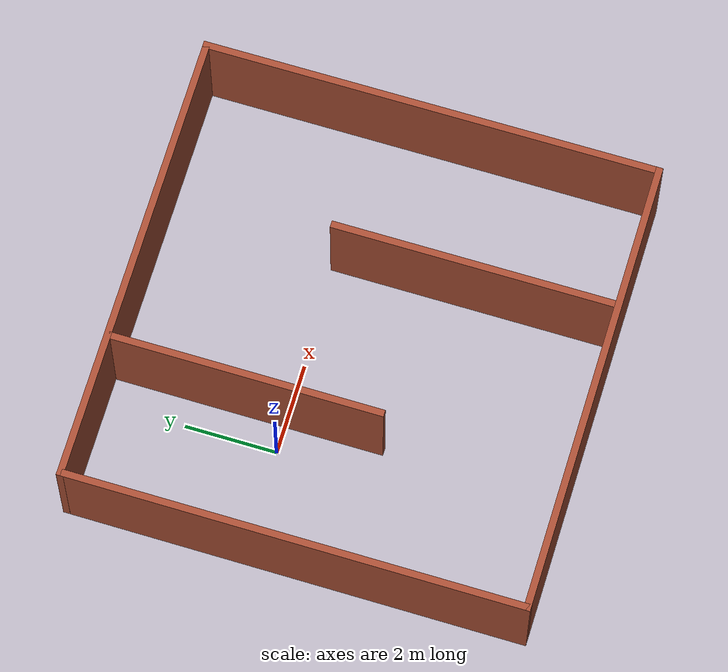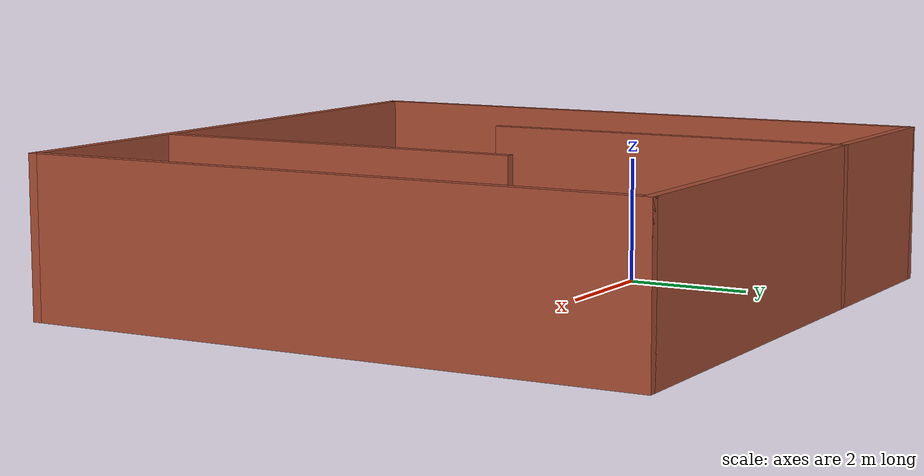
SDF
<?xml version='1.0'?>
<sdf version='1.5'>
  <model name='maze_4'>
    <pose frame=''>2.485 -1.135 0 0 -0 0</pose>
    <link name='Wall_0'>
      <collision name='Wall_0_Collision'>
        <geometry>
          <box>
            <size>10 0.15 2.5</size>
          </box>
        </geometry>
        <pose frame=''>0 0 1.25 0 -0 0</pose>
      </collision>
      <visual name='Wall_0_Visual'>
        <pose frame=''>0 0 1.25 0 -0 0</pose>
        <geometry>
          <box>
            <size>10 0.15 2.5</size>
          </box>
        </geometry>
        <material>
          <script>
            <uri>file://media/materials/scripts/gazebo.material</uri>
            <name>Gazebo/Bricks</name>
          </script>
          <ambient>1 1 1 1</ambient>
        </material>
      </visual>
      <pose frame=''>-4.925 -0 0 0 0 -1.5708</pose>
    </link>
    <link name='Wall_10'>
      <collision name='Wall_10_Collision'>
        <geometry>
          <box>
            <size>6.25 0.15 2.5</size>
          </box>
        </geometry>
        <pose frame=''>0 0 1.25 0 -0 0</pose>
      </collision>
      <visual name='Wall_10_Visual'>
        <pose frame=''>0 0 1.25 0 -0 0</pose>
        <geometry>
          <box>
            <size>6.25 0.15 2.5</size>
          </box>
        </geometry>
        <material>
          <script>
            <uri>file://media/materials/scripts/gazebo.material</uri>
            <name>Gazebo/Bricks</name>
          </script>
          <ambient>1 1 1 1</ambient>
        </material>
      </visual>
      <pose frame=''>1.825 -1.875 0 0 -0 1.5708</pose>
    </link>
    <link name='Wall_2'>
      <collision name='Wall_2_Collision'>
        <geometry>
          <box>
            <size>10 0.15 2.5</size>
          </box>
        </geometry>
        <pose frame=''>0 0 1.25 0 -0 0</pose>
      </collision>
      <visual name='Wall_2_Visual'>
        <pose frame=''>0 0 1.25 0 -0 0</pose>
        <geometry>
          <box>
            <size>10 0.15 2.5</size>
          </box>
        </geometry>
        <material>
          <script>
            <uri>file://media/materials/scripts/gazebo.material</uri>
            <name>Gazebo/Bricks</name>
          </script>
          <ambient>1 1 1 1</ambient>
        </material>
      </visual>
      <pose frame=''>-0 4.925 0 0 -0 0</pose>
    </link>
    <link name='Wall_3'>
      <collision name='Wall_3_Collision'>
        <geometry>
          <box>
            <size>10 0.15 2.5</size>
          </box>
        </geometry>
        <pose frame=''>0 0 1.25 0 -0 0</pose>
      </collision>
      <visual name='Wall_3_Visual'>
        <pose frame=''>0 0 1.25 0 -0 0</pose>
        <geometry>
          <box>
            <size>10 0.15 2.5</size>
          </box>
        </geometry>
        <material>
          <script>
            <uri>file://media/materials/scripts/gazebo.material</uri>
            <name>Gazebo/Bricks</name>
          </script>
          <ambient>1 1 1 1</ambient>
        </material>
      </visual>
      <pose frame=''>4.925 -0 0 0 0 -1.5708</pose>
    </link>
    <link name='Wall_4'>
      <collision name='Wall_4_Collision'>
        <geometry>
          <box>
            <size>10 0.15 2.5</size>
          </box>
        </geometry>
        <pose frame=''>0 0 1.25 0 -0 0</pose>
      </collision>
      <visual name='Wall_4_Visual'>
        <pose frame=''>0 0 1.25 0 -0 0</pose>
        <geometry>
          <box>
            <size>10 0.15 2.5</size>
          </box>
        </geometry>
        <material>
          <script>
            <uri>file://media/materials/scripts/gazebo.material</uri>
            <name>Gazebo/Bricks</name>
          </script>
          <ambient>1 1 1 1</ambient>
        </material>
      </visual>
      <pose frame=''>-0 -4.925 0 0 -0 3.14159</pose>
    </link>
    <link name='Wall_7'>
      <collision name='Wall_7_Collision'>
        <geometry>
          <box>
            <size>6 0.15 2.5</size>
          </box>
        </geometry>
        <pose frame=''>0 0 1.25 0 -0 0</pose>
      </collision>
      <visual name='Wall_7_Visual'>
        <pose frame=''>0 0 1.25 0 -0 0</pose>
        <geometry>
          <box>
            <size>6 0.15 2.5</size>
          </box>
        </geometry>
        <material>
          <script>
            <uri>file://media/materials/scripts/gazebo.material</uri>
            <name>Gazebo/Bricks</name>
          </script>
          <ambient>1 1 1 1</ambient>
        </material>
      </visual>
      <pose frame=''>-1.825 2 0 0 0 -1.5708</pose>
    </link>
    <static>1</static>
  </model>
</sdf>
